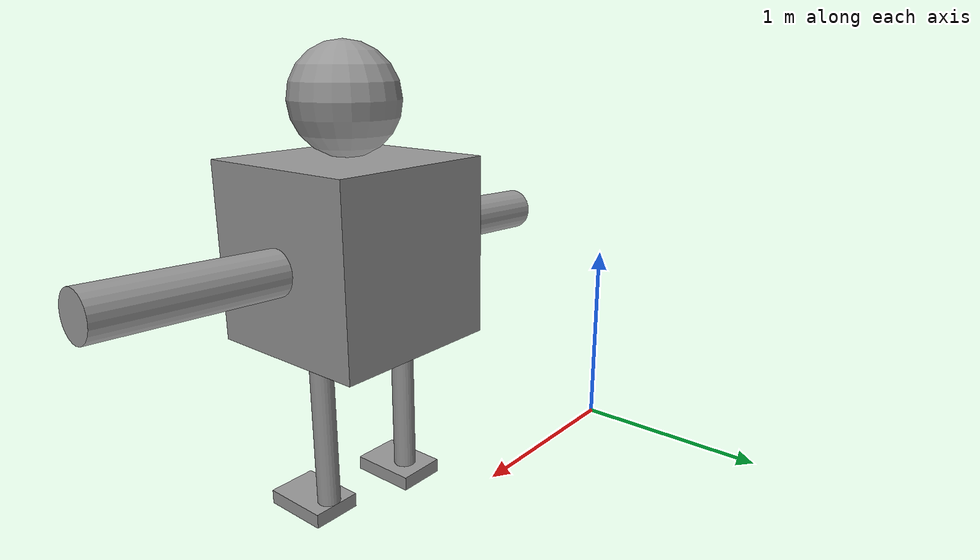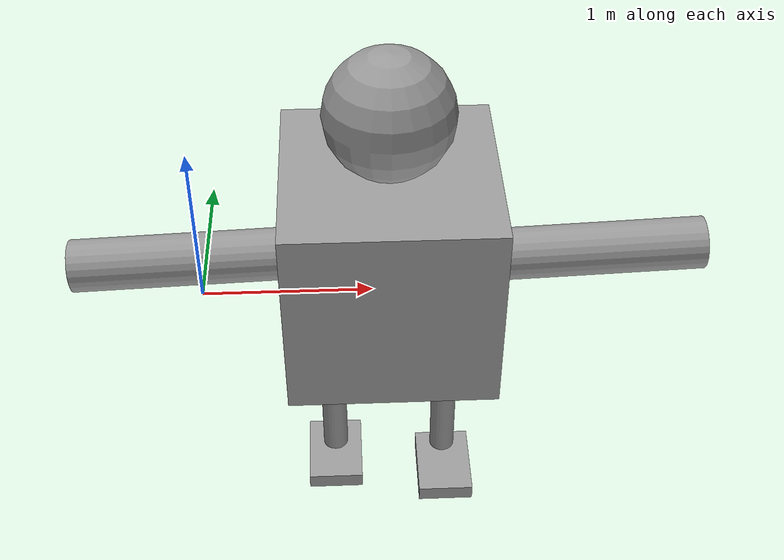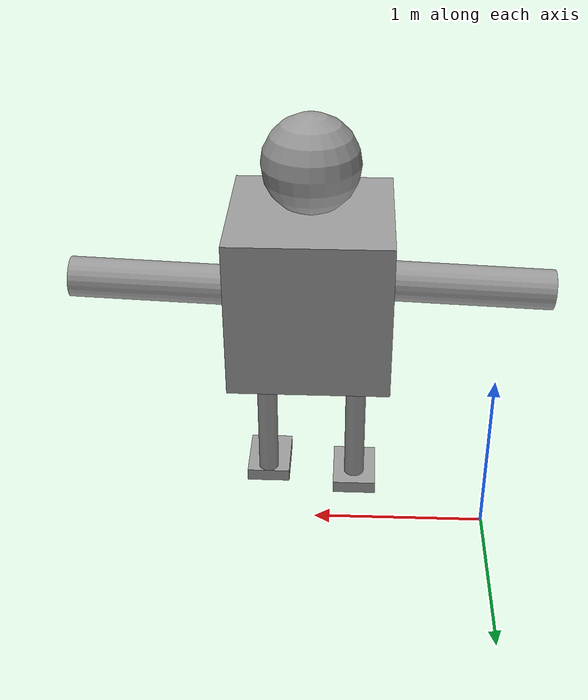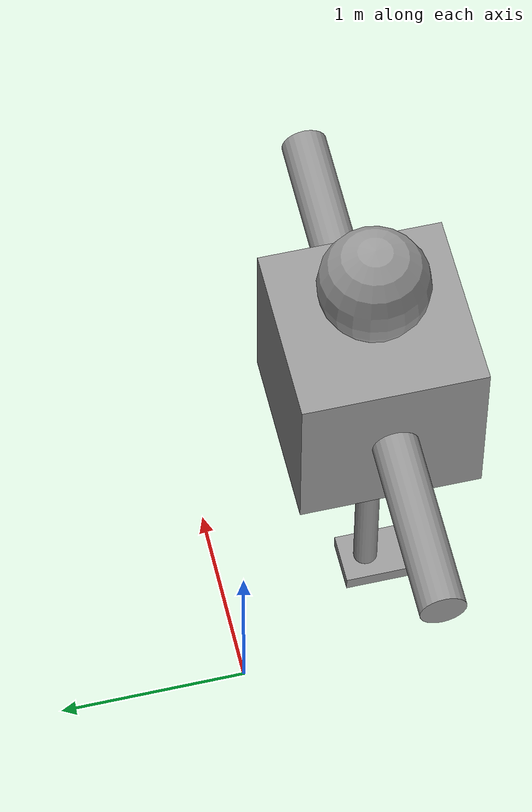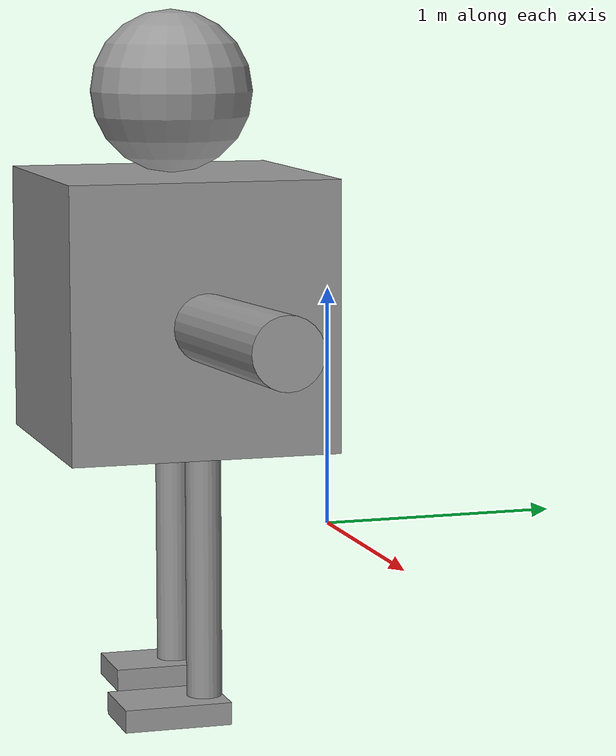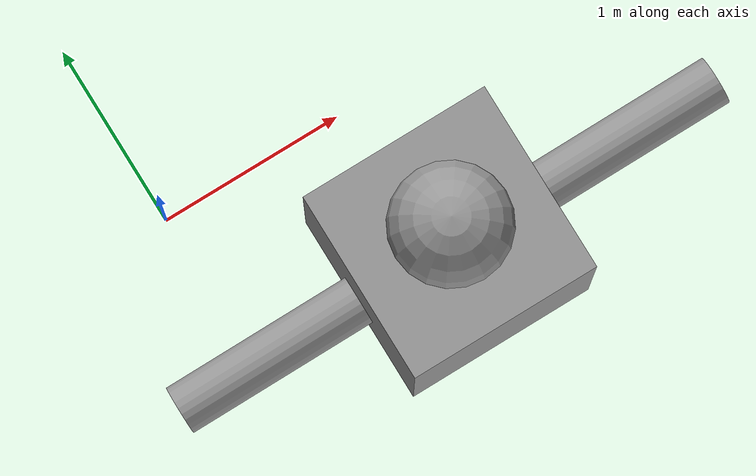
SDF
<?xml version='1.0'?>
<sdf version='1.6'>
  <model name='first_model'>
    <link name='link_0'>
      <pose frame=''>1.34948 -1.03796 -0.376734 0 -0 0</pose>
      <inertial>
        <mass>0.0094372</mass>
        <inertia>
          <ixx>0.000130784</ixx>
          <ixy>0</ixy>
          <ixz>0</ixz>
          <iyy>6.91384e-05</iyy>
          <iyz>0</iyz>
          <izz>0.000189075</izz>
        </inertia>
        <pose frame=''>0 0 0 0 -0 0</pose>
      </inertial>
      <visual name='visual'>
        <pose frame=''>0 0 0 0 -0 0</pose>
        <geometry>
          <box>
            <size>0.284636 0.399254 0.083044</size>
          </box>
        </geometry>
        <material>
          <lighting>1</lighting>
          <script>
            <uri>file://media/materials/scripts/gazebo.material</uri>
            <name>Gazebo/Grey</name>
          </script>
          <shader type='pixel'/>
          <ambient>0.3 0.3 0.3 1</ambient>
          <diffuse>0.7 0.7 0.7 1</diffuse>
          <specular>0.01 0.01 0.01 1</specular>
          <emissive>0 0 0 1</emissive>
        </material>
        <transparency>0</transparency>
        <cast_shadows>1</cast_shadows>
      </visual>
      <collision name='collision'>
        <laser_retro>0</laser_retro>
        <max_contacts>10</max_contacts>
        <pose frame=''>0 0 0 0 -0 0</pose>
        <geometry>
          <box>
            <size>0.284636 0.399254 0.083044</size>
          </box>
        </geometry>
        <surface>
          <friction>
            <ode>
              <mu>1</mu>
              <mu2>1</mu2>
              <fdir1>0 0 0</fdir1>
              <slip1>0</slip1>
              <slip2>0</slip2>
            </ode>
            <torsional>
              <coefficient>1</coefficient>
              <patch_radius>0</patch_radius>
              <surface_radius>0</surface_radius>
              <use_patch_radius>1</use_patch_radius>
              <ode>
                <slip>0</slip>
              </ode>
            </torsional>
          </friction>
          <bounce>
            <restitution_coefficient>0</restitution_coefficient>
            <threshold>1e+06</threshold>
          </bounce>
          <contact>
            <collide_without_contact>0</collide_without_contact>
            <collide_without_contact_bitmask>1</collide_without_contact_bitmask>
            <collide_bitmask>1</collide_bitmask>
            <ode>
              <soft_cfm>0</soft_cfm>
              <soft_erp>0.2</soft_erp>
              <kp>1e+13</kp>
              <kd>1</kd>
              <max_vel>0.01</max_vel>
              <min_depth>0</min_depth>
            </ode>
            <bullet>
              <split_impulse>1</split_impulse>
              <split_impulse_penetration_threshold>-0.01</split_impulse_penetration_threshold>
              <soft_cfm>0</soft_cfm>
              <soft_erp>0.2</soft_erp>
              <kp>1e+13</kp>
              <kd>1</kd>
            </bullet>
          </contact>
        </surface>
      </collision>
    </link>
    <link name='link_0_clone'>
      <pose frame=''>0.761524 -0.928795 -0.376734 0 -0 0</pose>
      <inertial>
        <mass>0.0094372</mass>
        <inertia>
          <ixx>0.000130784</ixx>
          <ixy>0</ixy>
          <ixz>0</ixz>
          <iyy>6.91384e-05</iyy>
          <iyz>0</iyz>
          <izz>0.000189075</izz>
        </inertia>
        <pose frame=''>0 0 0 0 -0 0</pose>
      </inertial>
      <visual name='visual'>
        <pose frame=''>0 0 0 0 -0 0</pose>
        <geometry>
          <box>
            <size>0.284636 0.399254 0.083044</size>
          </box>
        </geometry>
        <material>
          <lighting>1</lighting>
          <script>
            <uri>file://media/materials/scripts/gazebo.material</uri>
            <name>Gazebo/Grey</name>
          </script>
          <shader type='pixel'/>
          <ambient>0.3 0.3 0.3 1</ambient>
          <diffuse>0.7 0.7 0.7 1</diffuse>
          <specular>0.01 0.01 0.01 1</specular>
          <emissive>0 0 0 1</emissive>
        </material>
        <transparency>0</transparency>
        <cast_shadows>1</cast_shadows>
      </visual>
      <collision name='collision'>
        <laser_retro>0</laser_retro>
        <max_contacts>10</max_contacts>
        <pose frame=''>0 0 0 0 -0 0</pose>
        <geometry>
          <box>
            <size>0.284636 0.399254 0.083044</size>
          </box>
        </geometry>
        <surface>
          <friction>
            <ode>
              <mu>1</mu>
              <mu2>1</mu2>
              <fdir1>0 0 0</fdir1>
              <slip1>0</slip1>
              <slip2>0</slip2>
            </ode>
            <torsional>
              <coefficient>1</coefficient>
              <patch_radius>0</patch_radius>
              <surface_radius>0</surface_radius>
              <use_patch_radius>1</use_patch_radius>
              <ode>
                <slip>0</slip>
              </ode>
            </torsional>
          </friction>
          <bounce>
            <restitution_coefficient>0</restitution_coefficient>
            <threshold>1e+06</threshold>
          </bounce>
          <contact>
            <collide_without_contact>0</collide_without_contact>
            <collide_without_contact_bitmask>1</collide_without_contact_bitmask>
            <collide_bitmask>1</collide_bitmask>
            <ode>
              <soft_cfm>0</soft_cfm>
              <soft_erp>0.2</soft_erp>
              <kp>1e+13</kp>
              <kd>1</kd>
              <max_vel>0.01</max_vel>
              <min_depth>0</min_depth>
            </ode>
            <bullet>
              <split_impulse>1</split_impulse>
              <split_impulse_penetration_threshold>-0.01</split_impulse_penetration_threshold>
              <soft_cfm>0</soft_cfm>
              <soft_erp>0.2</soft_erp>
              <kp>1e+13</kp>
              <kd>1</kd>
            </bullet>
          </contact>
        </surface>
      </collision>
    </link>
    <link name='link_1'>
      <pose frame=''>0.763842 -0.869168 0.081744 0 -0 0</pose>
      <inertial>
        <mass>0.0171814</mass>
        <inertia>
          <ixx>0.00145024</ixx>
          <ixy>0</ixy>
          <ixz>0</ixz>
          <iyy>0.00145024</iyy>
          <iyz>0</iyz>
          <izz>3.69016e-05</izz>
        </inertia>
        <pose frame=''>0 0 0 0 -0 0</pose>
      </inertial>
      <visual name='visual'>
        <pose frame=''>0 0 0 0 -0 0</pose>
        <geometry>
          <cylinder>
            <radius>0.0655402</radius>
            <length>1</length>
          </cylinder>
        </geometry>
        <material>
          <lighting>1</lighting>
          <script>
            <uri>file://media/materials/scripts/gazebo.material</uri>
            <name>Gazebo/Grey</name>
          </script>
          <shader type='pixel'/>
          <ambient>0.3 0.3 0.3 1</ambient>
          <diffuse>0.7 0.7 0.7 1</diffuse>
          <specular>0.01 0.01 0.01 1</specular>
          <emissive>0 0 0 1</emissive>
        </material>
        <transparency>0</transparency>
        <cast_shadows>1</cast_shadows>
      </visual>
      <collision name='collision'>
        <laser_retro>0</laser_retro>
        <max_contacts>10</max_contacts>
        <pose frame=''>0 0 0 0 -0 0</pose>
        <geometry>
          <cylinder>
            <radius>0.06554</radius>
            <length>1</length>
          </cylinder>
        </geometry>
        <surface>
          <friction>
            <ode>
              <mu>1</mu>
              <mu2>1</mu2>
              <fdir1>0 0 0</fdir1>
              <slip1>0</slip1>
              <slip2>0</slip2>
            </ode>
            <torsional>
              <coefficient>1</coefficient>
              <patch_radius>0</patch_radius>
              <surface_radius>0</surface_radius>
              <use_patch_radius>1</use_patch_radius>
              <ode>
                <slip>0</slip>
              </ode>
            </torsional>
          </friction>
          <bounce>
            <restitution_coefficient>0</restitution_coefficient>
            <threshold>1e+06</threshold>
          </bounce>
          <contact>
            <collide_without_contact>0</collide_without_contact>
            <collide_without_contact_bitmask>1</collide_without_contact_bitmask>
            <collide_bitmask>1</collide_bitmask>
            <ode>
              <soft_cfm>0</soft_cfm>
              <soft_erp>0.2</soft_erp>
              <kp>1e+13</kp>
              <kd>1</kd>
              <max_vel>0.01</max_vel>
              <min_depth>0</min_depth>
            </ode>
            <bullet>
              <split_impulse>1</split_impulse>
              <split_impulse_penetration_threshold>-0.01</split_impulse_penetration_threshold>
              <soft_cfm>0</soft_cfm>
              <soft_erp>0.2</soft_erp>
              <kp>1e+13</kp>
              <kd>1</kd>
            </bullet>
          </contact>
        </surface>
      </collision>
    </link>
    <link name='link_1_clone'>
      <pose frame=''>1.34948 -0.903875 0.081744 0 -0 0</pose>
      <inertial>
        <mass>0.0171814</mass>
        <inertia>
          <ixx>0.00145024</ixx>
          <ixy>0</ixy>
          <ixz>0</ixz>
          <iyy>0.00145024</iyy>
          <iyz>0</iyz>
          <izz>3.69016e-05</izz>
        </inertia>
        <pose frame=''>0 0 0 0 -0 0</pose>
      </inertial>
      <visual name='visual'>
        <pose frame=''>0 0 0 0 -0 0</pose>
        <geometry>
          <cylinder>
            <radius>0.0655402</radius>
            <length>1</length>
          </cylinder>
        </geometry>
        <material>
          <lighting>1</lighting>
          <script>
            <uri>file://media/materials/scripts/gazebo.material</uri>
            <name>Gazebo/Grey</name>
          </script>
          <shader type='pixel'/>
          <ambient>0.3 0.3 0.3 1</ambient>
          <diffuse>0.7 0.7 0.7 1</diffuse>
          <specular>0.01 0.01 0.01 1</specular>
          <emissive>0 0 0 1</emissive>
        </material>
        <transparency>0</transparency>
        <cast_shadows>1</cast_shadows>
      </visual>
      <collision name='collision'>
        <laser_retro>0</laser_retro>
        <max_contacts>10</max_contacts>
        <pose frame=''>0 0 0 0 -0 0</pose>
        <geometry>
          <cylinder>
            <radius>0.06554</radius>
            <length>1</length>
          </cylinder>
        </geometry>
        <surface>
          <friction>
            <ode>
              <mu>1</mu>
              <mu2>1</mu2>
              <fdir1>0 0 0</fdir1>
              <slip1>0</slip1>
              <slip2>0</slip2>
            </ode>
            <torsional>
              <coefficient>1</coefficient>
              <patch_radius>0</patch_radius>
              <surface_radius>0</surface_radius>
              <use_patch_radius>1</use_patch_radius>
              <ode>
                <slip>0</slip>
              </ode>
            </torsional>
          </friction>
          <bounce>
            <restitution_coefficient>0</restitution_coefficient>
            <threshold>1e+06</threshold>
          </bounce>
          <contact>
            <collide_without_contact>0</collide_without_contact>
            <collide_without_contact_bitmask>1</collide_without_contact_bitmask>
            <collide_bitmask>1</collide_bitmask>
            <ode>
              <soft_cfm>0</soft_cfm>
              <soft_erp>0.2</soft_erp>
              <kp>1e+13</kp>
              <kd>1</kd>
              <max_vel>0.01</max_vel>
              <min_depth>0</min_depth>
            </ode>
            <bullet>
              <split_impulse>1</split_impulse>
              <split_impulse_penetration_threshold>-0.01</split_impulse_penetration_threshold>
              <soft_cfm>0</soft_cfm>
              <soft_erp>0.2</soft_erp>
              <kp>1e+13</kp>
              <kd>1</kd>
            </bullet>
          </contact>
        </surface>
      </collision>
    </link>
    <link name='link_3'>
      <pose frame=''>1.05896 -0.938686 1.08174 0 -0 0</pose>
      <inertial>
        <mass>1</mass>
        <inertia>
          <ixx>0.166667</ixx>
          <ixy>0</ixy>
          <ixz>0</ixz>
          <iyy>0.166667</iyy>
          <iyz>0</iyz>
          <izz>0.166667</izz>
        </inertia>
      </inertial>
      <visual name='visual'>
        <pose frame=''>0 0 0 0 -0 0</pose>
        <geometry>
          <box>
            <size>1 1 1</size>
          </box>
        </geometry>
        <material>
          <lighting>1</lighting>
          <script>
            <uri>file://media/materials/scripts/gazebo.material</uri>
            <name>Gazebo/Grey</name>
          </script>
          <shader type='pixel'/>
          <ambient>0.3 0.3 0.3 1</ambient>
          <diffuse>0.7 0.7 0.7 1</diffuse>
          <specular>0.01 0.01 0.01 1</specular>
          <emissive>0 0 0 1</emissive>
        </material>
        <transparency>0</transparency>
        <cast_shadows>1</cast_shadows>
      </visual>
      <collision name='collision'>
        <laser_retro>0</laser_retro>
        <max_contacts>10</max_contacts>
        <pose frame=''>0 0 0 0 -0 0</pose>
        <geometry>
          <box>
            <size>1 1 1</size>
          </box>
        </geometry>
        <surface>
          <friction>
            <ode>
              <mu>1</mu>
              <mu2>1</mu2>
              <fdir1>0 0 0</fdir1>
              <slip1>0</slip1>
              <slip2>0</slip2>
            </ode>
            <torsional>
              <coefficient>1</coefficient>
              <patch_radius>0</patch_radius>
              <surface_radius>0</surface_radius>
              <use_patch_radius>1</use_patch_radius>
              <ode>
                <slip>0</slip>
              </ode>
            </torsional>
          </friction>
          <bounce>
            <restitution_coefficient>0</restitution_coefficient>
            <threshold>1e+06</threshold>
          </bounce>
          <contact>
            <collide_without_contact>0</collide_without_contact>
            <collide_without_contact_bitmask>1</collide_without_contact_bitmask>
            <collide_bitmask>1</collide_bitmask>
            <ode>
              <soft_cfm>0</soft_cfm>
              <soft_erp>0.2</soft_erp>
              <kp>1e+13</kp>
              <kd>1</kd>
              <max_vel>0.01</max_vel>
              <min_depth>0</min_depth>
            </ode>
            <bullet>
              <split_impulse>1</split_impulse>
              <split_impulse_penetration_threshold>-0.01</split_impulse_penetration_threshold>
              <soft_cfm>0</soft_cfm>
              <soft_erp>0.2</soft_erp>
              <kp>1e+13</kp>
              <kd>1</kd>
            </bullet>
          </contact>
        </surface>
      </collision>
    </link>
    <link name='link_4'>
      <pose frame=''>1.05896 -0.938686 1.88247 0 -0 0</pose>
      <inertial>
        <mass>0.217579</mass>
        <inertia>
          <ixx>0.00787095</ixx>
          <ixy>0</ixy>
          <ixz>0</ixz>
          <iyy>0.00787095</iyy>
          <iyz>0</iyz>
          <izz>0.00787095</izz>
        </inertia>
        <pose frame=''>0 0 0 0 -0 0</pose>
      </inertial>
      <visual name='visual'>
        <pose frame=''>0 0 0 0 -0 0</pose>
        <geometry>
          <sphere>
            <radius>0.300729</radius>
          </sphere>
        </geometry>
        <material>
          <lighting>1</lighting>
          <script>
            <uri>file://media/materials/scripts/gazebo.material</uri>
            <name>Gazebo/Grey</name>
          </script>
          <shader type='pixel'/>
          <ambient>0.3 0.3 0.3 1</ambient>
          <diffuse>0.7 0.7 0.7 1</diffuse>
          <specular>0.01 0.01 0.01 1</specular>
          <emissive>0 0 0 1</emissive>
        </material>
        <transparency>0</transparency>
        <cast_shadows>1</cast_shadows>
      </visual>
      <collision name='collision'>
        <laser_retro>0</laser_retro>
        <max_contacts>10</max_contacts>
        <pose frame=''>0 0 0 0 -0 0</pose>
        <geometry>
          <sphere>
            <radius>0.300729</radius>
          </sphere>
        </geometry>
        <surface>
          <friction>
            <ode>
              <mu>1</mu>
              <mu2>1</mu2>
              <fdir1>0 0 0</fdir1>
              <slip1>0</slip1>
              <slip2>0</slip2>
            </ode>
            <torsional>
              <coefficient>1</coefficient>
              <patch_radius>0</patch_radius>
              <surface_radius>0</surface_radius>
              <use_patch_radius>1</use_patch_radius>
              <ode>
                <slip>0</slip>
              </ode>
            </torsional>
          </friction>
          <bounce>
            <restitution_coefficient>0</restitution_coefficient>
            <threshold>1e+06</threshold>
          </bounce>
          <contact>
            <collide_without_contact>0</collide_without_contact>
            <collide_without_contact_bitmask>1</collide_without_contact_bitmask>
            <collide_bitmask>1</collide_bitmask>
            <ode>
              <soft_cfm>0</soft_cfm>
              <soft_erp>0.2</soft_erp>
              <kp>1e+13</kp>
              <kd>1</kd>
              <max_vel>0.01</max_vel>
              <min_depth>0</min_depth>
            </ode>
            <bullet>
              <split_impulse>1</split_impulse>
              <split_impulse_penetration_threshold>-0.01</split_impulse_penetration_threshold>
              <soft_cfm>0</soft_cfm>
              <soft_erp>0.2</soft_erp>
              <kp>1e+13</kp>
              <kd>1</kd>
            </bullet>
          </contact>
        </surface>
      </collision>
    </link>
    <link name='link_6'>
      <pose frame=''>0.053462 -0.945873 1.08892 0 1.52826 0</pose>
      <inertial>
        <mass>0.0631262</mass>
        <inertia>
          <ixx>0.00550958</ixx>
          <ixy>0</ixy>
          <ixz>0</ixz>
          <iyy>0.00550958</iyy>
          <iyz>0</iyz>
          <izz>0.000498121</izz>
        </inertia>
        <pose frame=''>0 0 0 0 -0 0</pose>
      </inertial>
      <visual name='visual'>
        <pose frame=''>0 0 0 0 -0 0</pose>
        <geometry>
          <cylinder>
            <radius>0.125625</radius>
            <length>1</length>
          </cylinder>
        </geometry>
        <material>
          <lighting>1</lighting>
          <script>
            <uri>file://media/materials/scripts/gazebo.material</uri>
            <name>Gazebo/Grey</name>
          </script>
          <shader type='pixel'/>
          <ambient>0.3 0.3 0.3 1</ambient>
          <diffuse>0.7 0.7 0.7 1</diffuse>
          <specular>0.01 0.01 0.01 1</specular>
          <emissive>0 0 0 1</emissive>
        </material>
        <transparency>0</transparency>
        <cast_shadows>1</cast_shadows>
      </visual>
      <collision name='collision'>
        <laser_retro>0</laser_retro>
        <max_contacts>10</max_contacts>
        <pose frame=''>0 0 0 0 -0 0</pose>
        <geometry>
          <cylinder>
            <radius>0.125625</radius>
            <length>1</length>
          </cylinder>
        </geometry>
        <surface>
          <friction>
            <ode>
              <mu>1</mu>
              <mu2>1</mu2>
              <fdir1>0 0 0</fdir1>
              <slip1>0</slip1>
              <slip2>0</slip2>
            </ode>
            <torsional>
              <coefficient>1</coefficient>
              <patch_radius>0</patch_radius>
              <surface_radius>0</surface_radius>
              <use_patch_radius>1</use_patch_radius>
              <ode>
                <slip>0</slip>
              </ode>
            </torsional>
          </friction>
          <bounce>
            <restitution_coefficient>0</restitution_coefficient>
            <threshold>1e+06</threshold>
          </bounce>
          <contact>
            <collide_without_contact>0</collide_without_contact>
            <collide_without_contact_bitmask>1</collide_without_contact_bitmask>
            <collide_bitmask>1</collide_bitmask>
            <ode>
              <soft_cfm>0</soft_cfm>
              <soft_erp>0.2</soft_erp>
              <kp>1e+13</kp>
              <kd>1</kd>
              <max_vel>0.01</max_vel>
              <min_depth>0</min_depth>
            </ode>
            <bullet>
              <split_impulse>1</split_impulse>
              <split_impulse_penetration_threshold>-0.01</split_impulse_penetration_threshold>
              <soft_cfm>0</soft_cfm>
              <soft_erp>0.2</soft_erp>
              <kp>1e+13</kp>
              <kd>1</kd>
            </bullet>
          </contact>
        </surface>
      </collision>
    </link>
    <link name='link_6_clone'>
      <pose frame=''>2.06385 -0.938686 1.08174 0 1.52826 0</pose>
      <inertial>
        <mass>0.0631262</mass>
        <inertia>
          <ixx>0.00550958</ixx>
          <ixy>0</ixy>
          <ixz>0</ixz>
          <iyy>0.00550958</iyy>
          <iyz>0</iyz>
          <izz>0.000498121</izz>
        </inertia>
        <pose frame=''>0 0 0 0 -0 0</pose>
      </inertial>
      <visual name='visual'>
        <pose frame=''>0 0 0 0 -0 0</pose>
        <geometry>
          <cylinder>
            <radius>0.125625</radius>
            <length>1</length>
          </cylinder>
        </geometry>
        <material>
          <lighting>1</lighting>
          <script>
            <uri>file://media/materials/scripts/gazebo.material</uri>
            <name>Gazebo/Grey</name>
          </script>
          <shader type='pixel'/>
          <ambient>0.3 0.3 0.3 1</ambient>
          <diffuse>0.7 0.7 0.7 1</diffuse>
          <specular>0.01 0.01 0.01 1</specular>
          <emissive>0 0 0 1</emissive>
        </material>
        <transparency>0</transparency>
        <cast_shadows>1</cast_shadows>
      </visual>
      <collision name='collision'>
        <laser_retro>0</laser_retro>
        <max_contacts>10</max_contacts>
        <pose frame=''>0 0 0 0 -0 0</pose>
        <geometry>
          <cylinder>
            <radius>0.125625</radius>
            <length>1</length>
          </cylinder>
        </geometry>
        <surface>
          <friction>
            <ode>
              <mu>1</mu>
              <mu2>1</mu2>
              <fdir1>0 0 0</fdir1>
              <slip1>0</slip1>
              <slip2>0</slip2>
            </ode>
            <torsional>
              <coefficient>1</coefficient>
              <patch_radius>0</patch_radius>
              <surface_radius>0</surface_radius>
              <use_patch_radius>1</use_patch_radius>
              <ode>
                <slip>0</slip>
              </ode>
            </torsional>
          </friction>
          <bounce>
            <restitution_coefficient>0</restitution_coefficient>
            <threshold>1e+06</threshold>
          </bounce>
          <contact>
            <collide_without_contact>0</collide_without_contact>
            <collide_without_contact_bitmask>1</collide_without_contact_bitmask>
            <collide_bitmask>1</collide_bitmask>
            <ode>
              <soft_cfm>0</soft_cfm>
              <soft_erp>0.2</soft_erp>
              <kp>1e+13</kp>
              <kd>1</kd>
              <max_vel>0.01</max_vel>
              <min_depth>0</min_depth>
            </ode>
            <bullet>
              <split_impulse>1</split_impulse>
              <split_impulse_penetration_threshold>-0.01</split_impulse_penetration_threshold>
              <soft_cfm>0</soft_cfm>
              <soft_erp>0.2</soft_erp>
              <kp>1e+13</kp>
              <kd>1</kd>
            </bullet>
          </contact>
        </surface>
      </collision>
    </link>
    <joint name='link_1_JOINT_1' type='revolute'>
      <parent>link_1</parent>
      <child>link_0_clone</child>
      <pose frame=''>0 0 0 0 -0 0</pose>
      <axis>
        <xyz>1 0 0</xyz>
        <use_parent_model_frame>0</use_parent_model_frame>
        <limit>
          <lower>-1.79769e+308</lower>
          <upper>1.79769e+308</upper>
          <effort>-1</effort>
          <velocity>-1</velocity>
        </limit>
        <dynamics>
          <spring_reference>0</spring_reference>
          <spring_stiffness>0</spring_stiffness>
          <damping>0</damping>
        </dynamics>
      </axis>
      <physics>
        <ode>
          <limit>
            <cfm>0</cfm>
            <erp>0.2</erp>
          </limit>
          <suspension>
            <cfm>0</cfm>
            <erp>0.2</erp>
          </suspension>
        </ode>
      </physics>
    </joint>
    <joint name='link_1_clone_JOINT_0' type='revolute'>
      <parent>link_1_clone</parent>
      <child>link_0</child>
      <pose frame=''>0 0 0 0 -0 0</pose>
      <axis>
        <xyz>1 0 0</xyz>
        <use_parent_model_frame>0</use_parent_model_frame>
        <limit>
          <lower>-1.79769e+308</lower>
          <upper>1.79769e+308</upper>
          <effort>-1</effort>
          <velocity>-1</velocity>
        </limit>
        <dynamics>
          <spring_reference>0</spring_reference>
          <spring_stiffness>0</spring_stiffness>
          <damping>0</damping>
        </dynamics>
      </axis>
      <physics>
        <ode>
          <limit>
            <cfm>0</cfm>
            <erp>0.2</erp>
          </limit>
          <suspension>
            <cfm>0</cfm>
            <erp>0.2</erp>
          </suspension>
        </ode>
      </physics>
    </joint>
    <joint name='link_1_clone_JOINT_3' type='revolute'>
      <parent>link_1_clone</parent>
      <child>link_0</child>
      <pose frame=''>0 0 0 0 -0 0</pose>
      <axis>
        <xyz>1 0 0</xyz>
        <use_parent_model_frame>0</use_parent_model_frame>
        <limit>
          <lower>-1.79769e+308</lower>
          <upper>1.79769e+308</upper>
          <effort>-1</effort>
          <velocity>-1</velocity>
        </limit>
        <dynamics>
          <spring_reference>0</spring_reference>
          <spring_stiffness>0</spring_stiffness>
          <damping>0</damping>
        </dynamics>
      </axis>
      <physics>
        <ode>
          <limit>
            <cfm>0</cfm>
            <erp>0.2</erp>
          </limit>
          <suspension>
            <cfm>0</cfm>
            <erp>0.2</erp>
          </suspension>
        </ode>
      </physics>
    </joint>
    <joint name='link_3_JOINT_6' type='revolute'>
      <parent>link_3</parent>
      <child>link_1_clone</child>
      <pose frame=''>0 0 0 0 -0 0</pose>
      <axis>
        <xyz>1 0 0</xyz>
        <use_parent_model_frame>0</use_parent_model_frame>
        <limit>
          <lower>-1.79769e+308</lower>
          <upper>1.79769e+308</upper>
          <effort>-1</effort>
          <velocity>-1</velocity>
        </limit>
        <dynamics>
          <spring_reference>0</spring_reference>
          <spring_stiffness>0</spring_stiffness>
          <damping>0</damping>
        </dynamics>
      </axis>
      <physics>
        <ode>
          <limit>
            <cfm>0</cfm>
            <erp>0.2</erp>
          </limit>
          <suspension>
            <cfm>0</cfm>
            <erp>0.2</erp>
          </suspension>
        </ode>
      </physics>
    </joint>
    <joint name='link_3_JOINT_7' type='revolute'>
      <parent>link_3</parent>
      <child>link_1</child>
      <pose frame=''>0 0 0 0 -0 0</pose>
      <axis>
        <xyz>1 0 0</xyz>
        <use_parent_model_frame>0</use_parent_model_frame>
        <limit>
          <lower>-1.79769e+308</lower>
          <upper>1.79769e+308</upper>
          <effort>-1</effort>
          <velocity>-1</velocity>
        </limit>
        <dynamics>
          <spring_reference>0</spring_reference>
          <spring_stiffness>0</spring_stiffness>
          <damping>0</damping>
        </dynamics>
      </axis>
      <physics>
        <ode>
          <limit>
            <cfm>0</cfm>
            <erp>0.2</erp>
          </limit>
          <suspension>
            <cfm>0</cfm>
            <erp>0.2</erp>
          </suspension>
        </ode>
      </physics>
    </joint>
    <joint name='link_4_JOINT_8' type='revolute'>
      <parent>link_4</parent>
      <child>link_3</child>
      <pose frame=''>0 0 0 0 -0 0</pose>
      <axis>
        <xyz>1 0 0</xyz>
        <use_parent_model_frame>0</use_parent_model_frame>
        <limit>
          <lower>-1.79769e+308</lower>
          <upper>1.79769e+308</upper>
          <effort>-1</effort>
          <velocity>-1</velocity>
        </limit>
        <dynamics>
          <spring_reference>0</spring_reference>
          <spring_stiffness>0</spring_stiffness>
          <damping>0</damping>
        </dynamics>
      </axis>
      <physics>
        <ode>
          <limit>
            <cfm>0</cfm>
            <erp>0.2</erp>
          </limit>
          <suspension>
            <cfm>0</cfm>
            <erp>0.2</erp>
          </suspension>
        </ode>
      </physics>
    </joint>
    <joint name='link_6_JOINT_11' type='revolute'>
      <parent>link_6</parent>
      <child>link_3</child>
      <pose frame=''>0 0 0 0 -0 0</pose>
      <axis>
        <xyz>1 0 0</xyz>
        <use_parent_model_frame>0</use_parent_model_frame>
        <limit>
          <lower>-1.79769e+308</lower>
          <upper>1.79769e+308</upper>
          <effort>-1</effort>
          <velocity>-1</velocity>
        </limit>
        <dynamics>
          <spring_reference>0</spring_reference>
          <spring_stiffness>0</spring_stiffness>
          <damping>0</damping>
        </dynamics>
      </axis>
      <physics>
        <ode>
          <limit>
            <cfm>0</cfm>
            <erp>0.2</erp>
          </limit>
          <suspension>
            <cfm>0</cfm>
            <erp>0.2</erp>
          </suspension>
        </ode>
      </physics>
    </joint>
    <joint name='link_6_clone_JOINT_12' type='revolute'>
      <parent>link_6_clone</parent>
      <child>link_3</child>
      <pose frame=''>0 0 0 0 -0 0</pose>
      <axis>
        <xyz>1 0 0</xyz>
        <use_parent_model_frame>0</use_parent_model_frame>
        <limit>
          <lower>-1.79769e+308</lower>
          <upper>1.79769e+308</upper>
          <effort>-1</effort>
          <velocity>-1</velocity>
        </limit>
        <dynamics>
          <spring_reference>0</spring_reference>
          <spring_stiffness>0</spring_stiffness>
          <damping>0</damping>
        </dynamics>
      </axis>
      <physics>
        <ode>
          <limit>
            <cfm>0</cfm>
            <erp>0.2</erp>
          </limit>
          <suspension>
            <cfm>0</cfm>
            <erp>0.2</erp>
          </suspension>
        </ode>
      </physics>
    </joint>
    <static>0</static>
    <allow_auto_disable>1</allow_auto_disable>
  </model>
</sdf>
